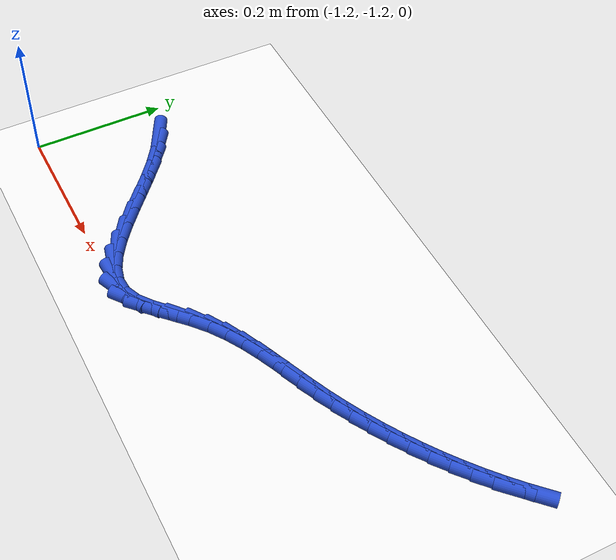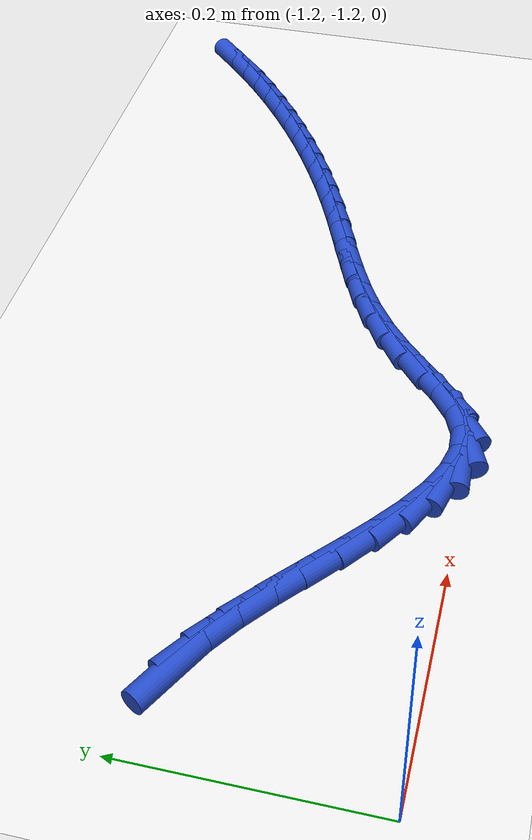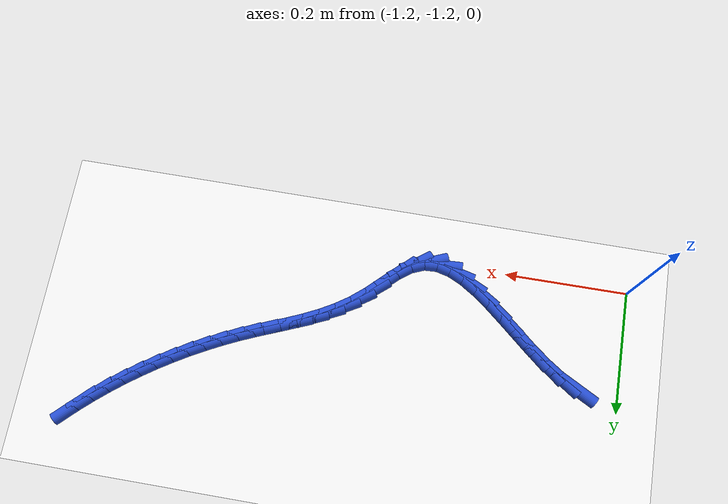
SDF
<sdf version="1.6">
 <world name="default">
  <model name="ground_plane">
   <static>1</static>
   <link name="link">
    <collision name="collision">
     <geometry><plane><normal>0 0 1</normal><size>100 100</size></plane></geometry>
     <surface><friction><ode><mu>100</mu><mu2>50</mu2></ode></friction></surface>
    </collision>
    <visual name="visual">
     <cast_shadows>0</cast_shadows>
     <geometry><plane><normal>0 0 1</normal><size>100 100</size></plane></geometry>
     <material>
      <script><uri>file://media/materials/scripts/gazebo.material</uri><name>Gazebo/WhiteGlow</name></script>
     </material>
    </visual>
   </link>
  </model>
  <model name="line">
   <link name="link_202">
    <pose>-1.1279537561873911 -1.0291107923651792 0.01 0 1.57 -0.49423961924538495</pose>
    <collision name="collision">
     <geometry><cylinder><radius>0.01</radius><length>0.08</length></cylinder></geometry>
    </collision>
    <visual name="visual">
     <material>
      <script><name>Gazebo/Blue</name><uri>file://media/materials/scripts/gazebo.material</uri></script>
     </material>
     <geometry><cylinder><radius>0.01</radius><length>0.08</length></cylinder></geometry>
    </visual>
   </link>
   <link name="link_203">
    <pose>-1.1036533207060824 -1.0422049927333208 0.01 0 1.57 -0.6050356152071986</pose>
    <collision name="collision">
     <geometry><cylinder><radius>0.01</radius><length>0.08</length></cylinder></geometry>
    </collision>
    <visual name="visual">
     <material>
      <script><name>Gazebo/Blue</name><uri>file://media/materials/scripts/gazebo.material</uri></script>
     </material>
     <geometry><cylinder><radius>0.01</radius><length>0.08</length></cylinder></geometry>
    </visual>
   </link>
   <link name="link_204">
    <pose>-1.0791421584092473 -1.059155807794931 0.01 0 1.57 -0.673096173999517</pose>
    <collision name="collision">
     <geometry><cylinder><radius>0.01</radius><length>0.08</length></cylinder></geometry>
    </collision>
    <visual name="visual">
     <material>
      <script><name>Gazebo/Blue</name><uri>file://media/materials/scripts/gazebo.material</uri></script>
     </material>
     <geometry><cylinder><radius>0.01</radius><length>0.08</length></cylinder></geometry>
    </visual>
   </link>
   <link name="link_205">
    <pose>-1.0545194017973927 -1.0787876823901275 0.01 0 1.57 -0.7091286339018433</pose>
    <collision name="collision">
     <geometry><cylinder><radius>0.01</radius><length>0.08</length></cylinder></geometry>
    </collision>
    <visual name="visual">
     <material>
      <script><name>Gazebo/Blue</name><uri>file://media/materials/scripts/gazebo.material</uri></script>
     </material>
     <geometry><cylinder><radius>0.01</radius><length>0.08</length></cylinder></geometry>
    </visual>
   </link>
   <link name="link_206">
    <pose>-1.0298841833710282 -1.0999250613590255 0.01 0 1.57 -0.7185380455121188</pose>
    <collision name="collision">
     <geometry><cylinder><radius>0.01</radius><length>0.08</length></cylinder></geometry>
    </collision>
    <visual name="visual">
     <material>
      <script><name>Gazebo/Blue</name><uri>file://media/materials/scripts/gazebo.material</uri></script>
     </material>
     <geometry><cylinder><radius>0.01</radius><length>0.08</length></cylinder></geometry>
    </visual>
   </link>
   <link name="link_207">
    <pose>-1.0053356356306613 -1.1213923895417441 0.01 0 1.57 -0.7024265538047976</pose>
    <collision name="collision">
     <geometry><cylinder><radius>0.01</radius><length>0.08</length></cylinder></geometry>
    </collision>
    <visual name="visual">
     <material>
      <script><name>Gazebo/Blue</name><uri>file://media/materials/scripts/gazebo.material</uri></script>
     </material>
     <geometry><cylinder><radius>0.01</radius><length>0.08</length></cylinder></geometry>
    </visual>
   </link>
   <link name="link_208">
    <pose>-0.980972891076802 -1.142014111778399 0.01 0 1.57 -0.6577580896653623</pose>
    <collision name="collision">
     <geometry><cylinder><radius>0.01</radius><length>0.08</length></cylinder></geometry>
    </collision>
    <visual name="visual">
     <material>
      <script><name>Gazebo/Blue</name><uri>file://media/materials/scripts/gazebo.material</uri></script>
     </material>
     <geometry><cylinder><radius>0.01</radius><length>0.08</length></cylinder></geometry>
    </visual>
   </link>
   <link name="link_209">
    <pose>-0.9568950822099566 -1.1606146729091076 0.01 0 1.57 -0.5764616563172363</pose>
    <collision name="collision">
     <geometry><cylinder><radius>0.01</radius><length>0.08</length></cylinder></geometry>
    </collision>
    <visual name="visual">
     <material>
      <script><name>Gazebo/Blue</name><uri>file://media/materials/scripts/gazebo.material</uri></script>
     </material>
     <geometry><cylinder><radius>0.01</radius><length>0.08</length></cylinder></geometry>
    </visual>
   </link>
   <link name="link_210">
    <pose>-0.9332013415306354 -1.1760185177739868 0.01 0 1.57 -0.44367915607353503</pose>
    <collision name="collision">
     <geometry><cylinder><radius>0.01</radius><length>0.08</length></cylinder></geometry>
    </collision>
    <visual name="visual">
     <material>
      <script><name>Gazebo/Blue</name><uri>file://media/materials/scripts/gazebo.material</uri></script>
     </material>
     <geometry><cylinder><radius>0.01</radius><length>0.08</length></cylinder></geometry>
    </visual>
   </link>
   <link name="link_211">
    <pose>-0.9099908015393449 -1.1870500912131536 0.01 0 1.57 -0.2377574956444818</pose>
    <collision name="collision">
     <geometry><cylinder><radius>0.01</radius><length>0.08</length></cylinder></geometry>
    </collision>
    <visual name="visual">
     <material>
      <script><name>Gazebo/Blue</name><uri>file://media/materials/scripts/gazebo.material</uri></script>
     </material>
     <geometry><cylinder><radius>0.01</radius><length>0.08</length></cylinder></geometry>
    </visual>
   </link>
   <link name="link_212">
    <pose>-0.887362594736595 -1.1925338380667247 0.01 0 1.57 0.05642382555922181</pose>
    <collision name="collision">
     <geometry><cylinder><radius>0.01</radius><length>0.08</length></cylinder></geometry>
    </collision>
    <visual name="visual">
     <material>
      <script><name>Gazebo/Blue</name><uri>file://media/materials/scripts/gazebo.material</uri></script>
     </material>
     <geometry><cylinder><radius>0.01</radius><length>0.08</length></cylinder></geometry>
    </visual>
   </link>
   <link name="link_213">
    <pose>-0.8654158536228931 -1.191294203174818 0.01 0 1.57 0.40283945112550784</pose>
    <collision name="collision">
     <geometry><cylinder><radius>0.01</radius><length>0.08</length></cylinder></geometry>
    </collision>
    <visual name="visual">
     <material>
      <script><name>Gazebo/Blue</name><uri>file://media/materials/scripts/gazebo.material</uri></script>
     </material>
     <geometry><cylinder><radius>0.01</radius><length>0.08</length></cylinder></geometry>
    </visual>
   </link>
   <link name="link_214">
    <pose>-0.8442334975139 -1.1822674635923633 0.01 0 1.57 0.6529525762551487</pose>
    <collision name="collision">
     <geometry><cylinder><radius>0.01</radius><length>0.08</length></cylinder></geometry>
    </collision>
    <visual name="visual">
     <material>
      <script><name>Gazebo/Blue</name><uri>file://media/materials/scripts/gazebo.material</uri></script>
     </material>
     <geometry><cylinder><radius>0.01</radius><length>0.08</length></cylinder></geometry>
    </visual>
   </link>
   <link name="link_215">
    <pose>-0.8235951734115907 -1.1664817503096927 0.01 0 1.57 0.7624800770881801</pose>
    <collision name="collision">
     <geometry><cylinder><radius>0.01</radius><length>0.08</length></cylinder></geometry>
    </collision>
    <visual name="visual">
     <material>
      <script><name>Gazebo/Blue</name><uri>file://media/materials/scripts/gazebo.material</uri></script>
     </material>
     <geometry><cylinder><radius>0.01</radius><length>0.08</length></cylinder></geometry>
    </visual>
   </link>
   <link name="link_216">
    <pose>-0.8030115347877047 -1.146820606596563 0.01 0 1.57 0.7748515925117522</pose>
    <collision name="collision">
     <geometry><cylinder><radius>0.01</radius><length>0.08</length></cylinder></geometry>
    </collision>
    <visual name="visual">
     <material>
      <script><name>Gazebo/Blue</name><uri>file://media/materials/scripts/gazebo.material</uri></script>
     </material>
     <geometry><cylinder><radius>0.01</radius><length>0.08</length></cylinder></geometry>
    </visual>
   </link>
   <link name="link_217">
    <pose>-0.7819839086192266 -1.126231906239835 0.01 0 1.57 0.706266540745131</pose>
    <collision name="collision">
     <geometry><cylinder><radius>0.01</radius><length>0.08</length></cylinder></geometry>
    </collision>
    <visual name="visual">
     <material>
      <script><name>Gazebo/Blue</name><uri>file://media/materials/scripts/gazebo.material</uri></script>
     </material>
     <geometry><cylinder><radius>0.01</radius><length>0.08</length></cylinder></geometry>
    </visual>
   </link>
   <link name="link_218">
    <pose>-0.7600428900749479 -1.1075149514088736 0.01 0 1.57 0.6089037401415944</pose>
    <collision name="collision">
     <geometry><cylinder><radius>0.01</radius><length>0.08</length></cylinder></geometry>
    </collision>
    <visual name="visual">
     <material>
      <script><name>Gazebo/Blue</name><uri>file://media/materials/scripts/gazebo.material</uri></script>
     </material>
     <geometry><cylinder><radius>0.01</radius><length>0.08</length></cylinder></geometry>
    </visual>
   </link>
   <link name="link_219">
    <pose>-0.737103159646165 -1.0915193448181264 0.01 0 1.57 0.5262128891347456</pose>
    <collision name="collision">
     <geometry><cylinder><radius>0.01</radius><length>0.08</length></cylinder></geometry>
    </collision>
    <visual name="visual">
     <material>
      <script><name>Gazebo/Blue</name><uri>file://media/materials/scripts/gazebo.material</uri></script>
     </material>
     <geometry><cylinder><radius>0.01</radius><length>0.08</length></cylinder></geometry>
    </visual>
   </link>
   <link name="link_220">
    <pose>-0.7133497382768226 -1.077722383076343 0.01 0 1.57 0.4623800912164985</pose>
    <collision name="collision">
     <geometry><cylinder><radius>0.01</radius><length>0.08</length></cylinder></geometry>
    </collision>
    <visual name="visual">
     <material>
      <script><name>Gazebo/Blue</name><uri>file://media/materials/scripts/gazebo.material</uri></script>
     </material>
     <geometry><cylinder><radius>0.01</radius><length>0.08</length></cylinder></geometry>
    </visual>
   </link>
   <link name="link_221">
    <pose>-0.6889732829659215 -1.065572752968305 0.01 0 1.57 0.4191483734067248</pose>
    <collision name="collision">
     <geometry><cylinder><radius>0.01</radius><length>0.08</length></cylinder></geometry>
    </collision>
    <visual name="visual">
     <material>
      <script><name>Gazebo/Blue</name><uri>file://media/materials/scripts/gazebo.material</uri></script>
     </material>
     <geometry><cylinder><radius>0.01</radius><length>0.08</length></cylinder></geometry>
    </visual>
   </link>
   <link name="link_222">
    <pose>-0.6641644507124609 -1.054519141278793 0.01 0 1.57 0.3972096738025511</pose>
    <collision name="collision">
     <geometry><cylinder><radius>0.01</radius><length>0.08</length></cylinder></geometry>
    </collision>
    <visual name="visual">
     <material>
      <script><name>Gazebo/Blue</name><uri>file://media/materials/scripts/gazebo.material</uri></script>
     </material>
     <geometry><cylinder><radius>0.01</radius><length>0.08</length></cylinder></geometry>
    </visual>
   </link>
   <link name="link_223">
    <pose>-0.6391138985154415 -1.0440102347925877 0.01 0 1.57 0.3967077485207883</pose>
    <collision name="collision">
     <geometry><cylinder><radius>0.01</radius><length>0.08</length></cylinder></geometry>
    </collision>
    <visual name="visual">
     <material>
      <script><name>Gazebo/Blue</name><uri>file://media/materials/scripts/gazebo.material</uri></script>
     </material>
     <geometry><cylinder><radius>0.01</radius><length>0.08</length></cylinder></geometry>
    </visual>
   </link>
   <link name="link_224">
    <pose>-0.6140122833738615 -1.0334947202944698 0.01 0 1.57 0.4171742133599638</pose>
    <collision name="collision">
     <geometry><cylinder><radius>0.01</radius><length>0.08</length></cylinder></geometry>
    </collision>
    <visual name="visual">
     <material>
      <script><name>Gazebo/Blue</name><uri>file://media/materials/scripts/gazebo.material</uri></script>
     </material>
     <geometry><cylinder><radius>0.01</radius><length>0.08</length></cylinder></geometry>
    </visual>
   </link>
   <link name="link_225">
    <pose>-0.5890478417601942 -1.022430792225113 0.01 0 1.57 0.4486944142813012</pose>
    <collision name="collision">
     <geometry><cylinder><radius>0.01</radius><length>0.08</length></cylinder></geometry>
    </collision>
    <visual name="visual">
     <material>
      <script><name>Gazebo/Blue</name><uri>file://media/materials/scripts/gazebo.material</uri></script>
     </material>
     <geometry><cylinder><radius>0.01</radius><length>0.08</length></cylinder></geometry>
    </visual>
   </link>
   <link name="link_226">
    <pose>-0.5643426357317273 -1.0105365734172553 0.01 0 1.57 0.48064971697918657</pose>
    <collision name="collision">
     <geometry><cylinder><radius>0.01</radius><length>0.08</length></cylinder></geometry>
    </collision>
    <visual name="visual">
     <material>
      <script><name>Gazebo/Blue</name><uri>file://media/materials/scripts/gazebo.material</uri></script>
     </material>
     <geometry><cylinder><radius>0.01</radius><length>0.08</length></cylinder></geometry>
    </visual>
   </link>
   <link name="link_227">
    <pose>-0.5399461321843664 -0.9978153353296948 0.01 0 1.57 0.5126034011466507</pose>
    <collision name="collision">
     <geometry><cylinder><radius>0.01</radius><length>0.08</length></cylinder></geometry>
    </collision>
    <visual name="visual">
     <material>
      <script><name>Gazebo/Blue</name><uri>file://media/materials/scripts/gazebo.material</uri></script>
     </material>
     <geometry><cylinder><radius>0.01</radius><length>0.08</length></cylinder></geometry>
    </visual>
   </link>
   <link name="link_228">
    <pose>-0.5159040898851274 -0.9842849146875479 0.01 0 1.57 0.5446593880254585</pose>
    <collision name="collision">
     <geometry><cylinder><radius>0.01</radius><length>0.08</length></cylinder></geometry>
    </collision>
    <visual name="visual">
     <material>
      <script><name>Gazebo/Blue</name><uri>file://media/materials/scripts/gazebo.material</uri></script>
     </material>
     <geometry><cylinder><radius>0.01</radius><length>0.08</length></cylinder></geometry>
    </visual>
   </link>
   <link name="link_229">
    <pose>-0.4922622676010227 -0.9699631482159293 0.01 0 1.57 0.5769198589140658</pose>
    <collision name="collision">
     <geometry><cylinder><radius>0.01</radius><length>0.08</length></cylinder></geometry>
    </collision>
    <visual name="visual">
     <material>
      <script><name>Gazebo/Blue</name><uri>file://media/materials/scripts/gazebo.material</uri></script>
     </material>
     <geometry><cylinder><radius>0.01</radius><length>0.08</length></cylinder></geometry>
    </visual>
   </link>
   <link name="link_230">
    <pose>-0.4690664240990684 -0.9548678726399562 0.01 0 1.57 0.6094855361013485</pose>
    <collision name="collision">
     <geometry><cylinder><radius>0.01</radius><length>0.08</length></cylinder></geometry>
    </collision>
    <visual name="visual">
     <material>
      <script><name>Gazebo/Blue</name><uri>file://media/materials/scripts/gazebo.material</uri></script>
     </material>
     <geometry><cylinder><radius>0.01</radius><length>0.08</length></cylinder></geometry>
    </visual>
   </link>
   <link name="link_231">
    <pose>-0.44636231814627697 -0.9390169246847432 0.01 0 1.57 0.6424558765151887</pose>
    <collision name="collision">
     <geometry><cylinder><radius>0.01</radius><length>0.08</length></cylinder></geometry>
    </collision>
    <visual name="visual">
     <material>
      <script><name>Gazebo/Blue</name><uri>file://media/materials/scripts/gazebo.material</uri></script>
     </material>
     <geometry><cylinder><radius>0.01</radius><length>0.08</length></cylinder></geometry>
    </visual>
   </link>
   <link name="link_232">
    <pose>-0.424195708509664 -0.922428141075407 0.01 0 1.57 0.6759291562675737</pose>
    <collision name="collision">
     <geometry><cylinder><radius>0.01</radius><length>0.08</length></cylinder></geometry>
    </collision>
    <visual name="visual">
     <material>
      <script><name>Gazebo/Blue</name><uri>file://media/materials/scripts/gazebo.material</uri></script>
     </material>
     <geometry><cylinder><radius>0.01</radius><length>0.08</length></cylinder></geometry>
    </visual>
   </link>
   <link name="link_233">
    <pose>-0.4026123539562424 -0.9051193585370623 0.01 0 1.57 0.7100024220244688</pose>
    <collision name="collision">
     <geometry><cylinder><radius>0.01</radius><length>0.08</length></cylinder></geometry>
    </collision>
    <visual name="visual">
     <material>
      <script><name>Gazebo/Blue</name><uri>file://media/materials/scripts/gazebo.material</uri></script>
     </material>
     <geometry><cylinder><radius>0.01</radius><length>0.08</length></cylinder></geometry>
    </visual>
   </link>
   <link name="link_234">
    <pose>-0.38165801325302756 -0.8871084137948261 0.01 0 1.57 0.7447712823888829</pose>
    <collision name="collision">
     <geometry><cylinder><radius>0.01</radius><length>0.08</length></cylinder></geometry>
    </collision>
    <visual name="visual">
     <material>
      <script><name>Gazebo/Blue</name><uri>file://media/materials/scripts/gazebo.material</uri></script>
     </material>
     <geometry><cylinder><radius>0.01</radius><length>0.08</length></cylinder></geometry>
    </visual>
   </link>
   <link name="link_235">
    <pose>-0.36137844516703316 -0.8684131435738136 0.01 0 1.57 0.7803295096297684</pose>
    <collision name="collision">
     <geometry><cylinder><radius>0.01</radius><length>0.08</length></cylinder></geometry>
    </collision>
    <visual name="visual">
     <material>
      <script><name>Gazebo/Blue</name><uri>file://media/materials/scripts/gazebo.material</uri></script>
     </material>
     <geometry><cylinder><radius>0.01</radius><length>0.08</length></cylinder></geometry>
    </visual>
   </link>
  </model>
 </world>
</sdf>
